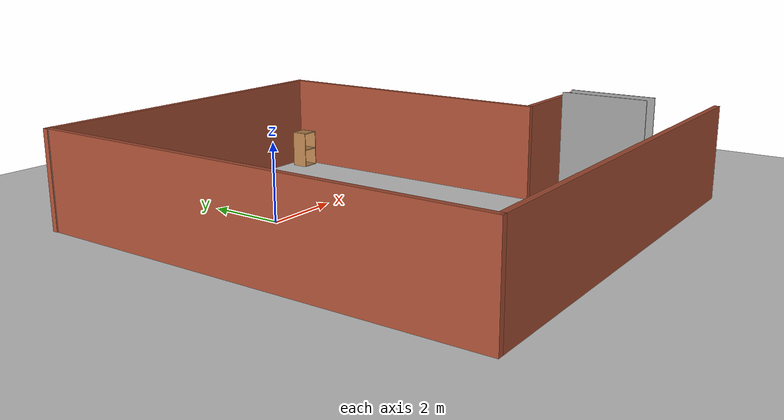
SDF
<sdf version="1.6">
 <world name="default">
  <light name="sun" type="directional">
   <pose>0 0 10 0 -0 0</pose>
   <diffuse>0.8 0.8 0.8 1</diffuse>
   <specular>0.2 0.2 0.2 1</specular>
   <attenuation>
    <range>1000</range>
    <constant>0.9</constant>
    <linear>0.01</linear>
    <quadratic>0.001</quadratic>
   </attenuation>
   <direction>-0.5 0.1 -0.9</direction>
  </light>
  <model name="ground_plane">
   <static>1</static>
   <link name="link">
    <collision name="collision">
     <geometry><plane><normal>0 0 1</normal><size>100 100</size></plane></geometry>
     <surface>
      <contact><collide_bitmask>65535</collide_bitmask></contact>
      <friction><ode><mu>100</mu><mu2>50</mu2></ode></friction>
     </surface>
    </collision>
    <visual name="visual">
     <cast_shadows>0</cast_shadows>
     <geometry><plane><normal>0 0 1</normal><size>100 100</size></plane></geometry>
     <material>
      <script><uri>file://media/materials/scripts/gazebo.material</uri><name>Gazebo/Grey</name></script>
     </material>
    </visual>
   </link>
  </model>
  <gravity>0 0 -9.8</gravity>
  <magnetic_field>6e-06 2.3e-05 -4.2e-05</magnetic_field>
  <atmosphere type="adiabatic"/>
  <physics name="default_physics" default="0" type="ode">
   <max_step_size>0.001</max_step_size>
   <real_time_factor>1</real_time_factor>
   <real_time_update_rate>1000</real_time_update_rate>
  </physics>
  <scene><ambient>0.4 0.4 0.4 1</ambient><background>0.7 0.7 0.7 1</background><shadows>0</shadows></scene>
  <audio><device>default</device></audio>
  <spherical_coordinates>
   <surface_model>EARTH_WGS84</surface_model>
   <latitude_deg>0</latitude_deg>
   <longitude_deg>0</longitude_deg>
   <elevation>0</elevation>
   <heading_deg>0</heading_deg>
  </spherical_coordinates>
  <model name="Untitled133">
   <link name="Wall_10">
    <pose>3 2.05 0 0 0 -1.5708</pose>
    <visual name="Wall_10_Visual">
     <pose>0 0 1.25 0 -0 0</pose>
     <geometry><box><size>8 0.15 2.5</size></box></geometry>
     <material>
      <script><uri>file://media/materials/scripts/gazebo.material</uri><name>Gazebo/Bricks</name></script>
      <ambient>1 1 1 1</ambient>
     </material>
     <meta><layer>0</layer></meta>
    </visual>
    <collision name="Wall_10_Collision">
     <pose>0 0 1.25 0 -0 0</pose>
     <geometry><box><size>8 0.15 2.5</size></box></geometry>
     <surface>
      <friction>
       <ode><mu>1</mu><mu2>1</mu2><fdir1>0 0 0</fdir1><slip1>0</slip1><slip2>0</slip2></ode>
       <torsional>
        <coefficient>1</coefficient>
        <patch_radius>0</patch_radius>
        <surface_radius>0</surface_radius>
        <use_patch_radius>1</use_patch_radius>
        <ode><slip>0</slip></ode>
       </torsional>
      </friction>
      <bounce><restitution_coefficient>0</restitution_coefficient><threshold>1e+06</threshold></bounce>
      <contact>
       <collide_without_contact>0</collide_without_contact>
       <collide_without_contact_bitmask>1</collide_without_contact_bitmask>
       <collide_bitmask>1</collide_bitmask>
       <ode>
        <soft_cfm>0</soft_cfm>
        <soft_erp>0.2</soft_erp>
        <kp>1e+13</kp>
        <kd>1</kd>
        <max_vel>0.01</max_vel>
        <min_depth>0</min_depth>
       </ode>
       <bullet>
        <split_impulse>1</split_impulse>
        <split_impulse_penetration_threshold>-0.01</split_impulse_penetration_threshold>
        <soft_cfm>0</soft_cfm>
        <soft_erp>0.2</soft_erp>
        <kp>1e+13</kp>
        <kd>1</kd>
       </bullet>
      </contact>
     </surface>
    </collision>
   </link>
   <link name="Wall_14">
    <pose>-5.82989 0.029886 0 0 0 -1.5708</pose>
    <visual name="Wall_14_Visual">
     <pose>0 0 1.25 0 -0 0</pose>
     <geometry><box><size>12 0.15 2.5</size></box></geometry>
     <material>
      <script><uri>file://media/materials/scripts/gazebo.material</uri><name>Gazebo/Bricks</name></script>
      <ambient>1 1 1 1</ambient>
     </material>
     <meta><layer>0</layer></meta>
    </visual>
    <collision name="Wall_14_Collision">
     <pose>0 0 1.25 0 -0 0</pose>
     <geometry><box><size>12 0.15 2.5</size></box></geometry>
     <surface>
      <friction>
       <ode><mu>1</mu><mu2>1</mu2><fdir1>0 0 0</fdir1><slip1>0</slip1><slip2>0</slip2></ode>
       <torsional>
        <coefficient>1</coefficient>
        <patch_radius>0</patch_radius>
        <surface_radius>0</surface_radius>
        <use_patch_radius>1</use_patch_radius>
        <ode><slip>0</slip></ode>
       </torsional>
      </friction>
      <bounce><restitution_coefficient>0</restitution_coefficient><threshold>1e+06</threshold></bounce>
      <contact>
       <collide_without_contact>0</collide_without_contact>
       <collide_without_contact_bitmask>1</collide_without_contact_bitmask>
       <collide_bitmask>1</collide_bitmask>
       <ode>
        <soft_cfm>0</soft_cfm>
        <soft_erp>0.2</soft_erp>
        <kp>1e+13</kp>
        <kd>1</kd>
        <max_vel>0.01</max_vel>
        <min_depth>0</min_depth>
       </ode>
       <bullet>
        <split_impulse>1</split_impulse>
        <split_impulse_penetration_threshold>-0.01</split_impulse_penetration_threshold>
        <soft_cfm>0</soft_cfm>
        <soft_erp>0.2</soft_erp>
        <kp>1e+13</kp>
        <kd>1</kd>
       </bullet>
      </contact>
     </surface>
    </collision>
   </link>
   <link name="Wall_16">
    <pose>-0.029887 -5.89511 0 0 -0 0</pose>
    <visual name="Wall_16_Visual">
     <pose>0 0 1.25 0 -0 0</pose>
     <geometry><box><size>11.75 0.15 2.5</size></box></geometry>
     <material>
      <script><uri>file://media/materials/scripts/gazebo.material</uri><name>Gazebo/Bricks</name></script>
      <ambient>1 1 1 1</ambient>
     </material>
     <meta><layer>0</layer></meta>
    </visual>
    <collision name="Wall_16_Collision">
     <pose>0 0 1.25 0 -0 0</pose>
     <geometry><box><size>11.75 0.15 2.5</size></box></geometry>
     <surface>
      <friction>
       <ode><mu>1</mu><mu2>1</mu2><fdir1>0 0 0</fdir1><slip1>0</slip1><slip2>0</slip2></ode>
       <torsional>
        <coefficient>1</coefficient>
        <patch_radius>0</patch_radius>
        <surface_radius>0</surface_radius>
        <use_patch_radius>1</use_patch_radius>
        <ode><slip>0</slip></ode>
       </torsional>
      </friction>
      <bounce><restitution_coefficient>0</restitution_coefficient><threshold>1e+06</threshold></bounce>
      <contact>
       <collide_without_contact>0</collide_without_contact>
       <collide_without_contact_bitmask>1</collide_without_contact_bitmask>
       <collide_bitmask>1</collide_bitmask>
       <ode>
        <soft_cfm>0</soft_cfm>
        <soft_erp>0.2</soft_erp>
        <kp>1e+13</kp>
        <kd>1</kd>
        <max_vel>0.01</max_vel>
        <min_depth>0</min_depth>
       </ode>
       <bullet>
        <split_impulse>1</split_impulse>
        <split_impulse_penetration_threshold>-0.01</split_impulse_penetration_threshold>
        <soft_cfm>0</soft_cfm>
        <soft_erp>0.2</soft_erp>
        <kp>1e+13</kp>
        <kd>1</kd>
       </bullet>
      </contact>
     </surface>
    </collision>
   </link>
   <link name="Wall_18">
    <pose>4.425 -1.875 0 0 -0 0</pose>
    <visual name="Wall_18_Visual">
     <pose>0 0 1.25 0 -0 0</pose>
     <geometry><box><size>3 0.15 2.5</size></box></geometry>
     <material>
      <script><uri>file://media/materials/scripts/gazebo.material</uri><name>Gazebo/Bricks</name></script>
      <ambient>1 1 1 1</ambient>
     </material>
     <meta><layer>0</layer></meta>
    </visual>
    <collision name="Wall_18_Collision">
     <pose>0 0 1.25 0 -0 0</pose>
     <geometry><box><size>3 0.15 2.5</size></box></geometry>
     <surface>
      <friction>
       <ode><mu>1</mu><mu2>1</mu2><fdir1>0 0 0</fdir1><slip1>0</slip1><slip2>0</slip2></ode>
       <torsional>
        <coefficient>1</coefficient>
        <patch_radius>0</patch_radius>
        <surface_radius>0</surface_radius>
        <use_patch_radius>1</use_patch_radius>
        <ode><slip>0</slip></ode>
       </torsional>
      </friction>
      <bounce><restitution_coefficient>0</restitution_coefficient><threshold>1e+06</threshold></bounce>
      <contact>
       <collide_without_contact>0</collide_without_contact>
       <collide_without_contact_bitmask>1</collide_without_contact_bitmask>
       <collide_bitmask>1</collide_bitmask>
       <ode>
        <soft_cfm>0</soft_cfm>
        <soft_erp>0.2</soft_erp>
        <kp>1e+13</kp>
        <kd>1</kd>
        <max_vel>0.01</max_vel>
        <min_depth>0</min_depth>
       </ode>
       <bullet>
        <split_impulse>1</split_impulse>
        <split_impulse_penetration_threshold>-0.01</split_impulse_penetration_threshold>
        <soft_cfm>0</soft_cfm>
        <soft_erp>0.2</soft_erp>
        <kp>1e+13</kp>
        <kd>1</kd>
       </bullet>
      </contact>
     </surface>
    </collision>
   </link>
   <link name="Wall_3">
    <pose>-1.425 5.975 0 0 -0 0</pose>
    <visual name="Wall_3_Visual">
     <pose>0 0 1.25 0 -0 0</pose>
     <geometry><box><size>9 0.15 2.5</size></box></geometry>
     <material>
      <script><uri>file://media/materials/scripts/gazebo.material</uri><name>Gazebo/Bricks</name></script>
      <ambient>1 1 1 1</ambient>
     </material>
     <meta><layer>0</layer></meta>
    </visual>
    <collision name="Wall_3_Collision">
     <pose>0 0 1.25 0 -0 0</pose>
     <geometry><box><size>9 0.15 2.5</size></box></geometry>
     <surface>
      <friction>
       <ode><mu>1</mu><mu2>1</mu2><fdir1>0 0 0</fdir1><slip1>0</slip1><slip2>0</slip2></ode>
       <torsional>
        <coefficient>1</coefficient>
        <patch_radius>0</patch_radius>
        <surface_radius>0</surface_radius>
        <use_patch_radius>1</use_patch_radius>
        <ode><slip>0</slip></ode>
       </torsional>
      </friction>
      <bounce><restitution_coefficient>0</restitution_coefficient><threshold>1e+06</threshold></bounce>
      <contact>
       <collide_without_contact>0</collide_without_contact>
       <collide_without_contact_bitmask>1</collide_without_contact_bitmask>
       <collide_bitmask>1</collide_bitmask>
       <ode>
        <soft_cfm>0</soft_cfm>
        <soft_erp>0.2</soft_erp>
        <kp>1e+13</kp>
        <kd>1</kd>
        <max_vel>0.01</max_vel>
        <min_depth>0</min_depth>
       </ode>
       <bullet>
        <split_impulse>1</split_impulse>
        <split_impulse_penetration_threshold>-0.01</split_impulse_penetration_threshold>
        <soft_cfm>0</soft_cfm>
        <soft_erp>0.2</soft_erp>
        <kp>1e+13</kp>
        <kd>1</kd>
       </bullet>
      </contact>
     </surface>
    </collision>
   </link>
   <link name="Wall_5">
    <pose>-5.82989 5.95489 0 0 -0 0</pose>
    <visual name="Wall_5_Visual">
     <pose>0 0 1.25 0 -0 0</pose>
     <geometry><box><size>0.15 0.15 2.5</size></box></geometry>
     <material>
      <script><uri>file://media/materials/scripts/gazebo.material</uri><name>Gazebo/Grey</name></script>
      <ambient>1 1 1 1</ambient>
     </material>
     <meta><layer>0</layer></meta>
    </visual>
    <collision name="Wall_5_Collision">
     <pose>0 0 1.25 0 -0 0</pose>
     <geometry><box><size>0.15 0.15 2.5</size></box></geometry>
     <surface>
      <friction>
       <ode><mu>1</mu><mu2>1</mu2><fdir1>0 0 0</fdir1><slip1>0</slip1><slip2>0</slip2></ode>
       <torsional>
        <coefficient>1</coefficient>
        <patch_radius>0</patch_radius>
        <surface_radius>0</surface_radius>
        <use_patch_radius>1</use_patch_radius>
        <ode><slip>0</slip></ode>
       </torsional>
      </friction>
      <bounce><restitution_coefficient>0</restitution_coefficient><threshold>1e+06</threshold></bounce>
      <contact>
       <collide_without_contact>0</collide_without_contact>
       <collide_without_contact_bitmask>1</collide_without_contact_bitmask>
       <collide_bitmask>1</collide_bitmask>
       <ode>
        <soft_cfm>0</soft_cfm>
        <soft_erp>0.2</soft_erp>
        <kp>1e+13</kp>
        <kd>1</kd>
        <max_vel>0.01</max_vel>
        <min_depth>0</min_depth>
       </ode>
       <bullet>
        <split_impulse>1</split_impulse>
        <split_impulse_penetration_threshold>-0.01</split_impulse_penetration_threshold>
        <soft_cfm>0</soft_cfm>
        <soft_erp>0.2</soft_erp>
        <kp>1e+13</kp>
        <kd>1</kd>
       </bullet>
      </contact>
     </surface>
    </collision>
   </link>
   <static>1</static>
   <pose>2.3811 -2.17981 0 0 -0 0</pose>
  </model>
  <model name="unit_box_0">
   <link name="link">
    <inertial>
     <mass>1</mass>
     <inertia>
      <ixx>0.166667</ixx>
      <ixy>0</ixy>
      <ixz>0</ixz>
      <iyy>0.166667</iyy>
      <iyz>0</iyz>
      <izz>0.166667</izz>
     </inertia>
    </inertial>
    <visual name="visual">
     <geometry><box><size>2.1994 0.038473 2.97721</size></box></geometry>
     <material>
      <script><name>Gazebo/Grey</name><uri>file://media/materials/scripts/gazebo.material</uri></script>
      <shader type="vertex"><normal_map>__default__</normal_map></shader>
      <ambient>0.3 0.3 0.3 1</ambient>
      <diffuse>0.7 0.7 0.7 1</diffuse>
      <specular>0.01 0.01 0.01 1</specular>
      <emissive>0 0 0 1</emissive>
     </material>
    </visual>
    <collision name="collision">
     <geometry><box><size>2.1994 0.038473 2.97721</size></box></geometry>
     <surface>
      <friction>
       <ode><mu>1</mu><mu2>1</mu2><fdir1>0 0 0</fdir1><slip1>0</slip1><slip2>0</slip2></ode>
       <torsional>
        <coefficient>1</coefficient>
        <patch_radius>0</patch_radius>
        <surface_radius>0</surface_radius>
        <use_patch_radius>1</use_patch_radius>
        <ode><slip>0</slip></ode>
       </torsional>
      </friction>
      <bounce><restitution_coefficient>0</restitution_coefficient><threshold>1e+06</threshold></bounce>
      <contact>
       <collide_without_contact>0</collide_without_contact>
       <collide_without_contact_bitmask>1</collide_without_contact_bitmask>
       <collide_bitmask>1</collide_bitmask>
       <ode>
        <soft_cfm>0</soft_cfm>
        <soft_erp>0.2</soft_erp>
        <kp>1e+13</kp>
        <kd>1</kd>
        <max_vel>0.01</max_vel>
        <min_depth>0</min_depth>
       </ode>
       <bullet>
        <split_impulse>1</split_impulse>
        <split_impulse_penetration_threshold>-0.01</split_impulse_penetration_threshold>
        <soft_cfm>0</soft_cfm>
        <soft_erp>0.2</soft_erp>
        <kp>1e+13</kp>
        <kd>1</kd>
       </bullet>
      </contact>
     </surface>
    </collision>
   </link>
   <static>0</static>
   <pose>5.30696 -6.13182 1.4886 0 -2e-06 -1.57495</pose>
  </model>
  <model name="unit_box_0_clone">
   <link name="link">
    <inertial>
     <mass>1</mass>
     <inertia>
      <ixx>0.166667</ixx>
      <ixy>0</ixy>
      <ixz>0</ixz>
      <iyy>0.166667</iyy>
      <iyz>0</iyz>
      <izz>0.166667</izz>
     </inertia>
    </inertial>
    <visual name="visual">
     <geometry><box><size>2.1994 0.038473 2.97721</size></box></geometry>
     <material>
      <script><name>Gazebo/Grey</name><uri>file://media/materials/scripts/gazebo.material</uri></script>
      <shader type="vertex"><normal_map>__default__</normal_map></shader>
      <ambient>0.3 0.3 0.3 1</ambient>
      <diffuse>0.7 0.7 0.7 1</diffuse>
      <specular>0.01 0.01 0.01 1</specular>
      <emissive>0 0 0 1</emissive>
     </material>
    </visual>
    <collision name="collision">
     <geometry><box><size>2.1994 0.038473 2.97721</size></box></geometry>
     <surface>
      <friction>
       <ode><mu>1</mu><mu2>1</mu2><fdir1>0 0 0</fdir1><slip1>0</slip1><slip2>0</slip2></ode>
       <torsional>
        <coefficient>1</coefficient>
        <patch_radius>0</patch_radius>
        <surface_radius>0</surface_radius>
        <use_patch_radius>1</use_patch_radius>
        <ode><slip>0</slip></ode>
       </torsional>
      </friction>
      <bounce><restitution_coefficient>0</restitution_coefficient><threshold>1e+06</threshold></bounce>
      <contact>
       <collide_without_contact>0</collide_without_contact>
       <collide_without_contact_bitmask>1</collide_without_contact_bitmask>
       <collide_bitmask>1</collide_bitmask>
       <ode>
        <soft_cfm>0</soft_cfm>
        <soft_erp>0.2</soft_erp>
        <kp>1e+13</kp>
        <kd>1</kd>
        <max_vel>0.01</max_vel>
        <min_depth>0</min_depth>
       </ode>
       <bullet>
        <split_impulse>1</split_impulse>
        <split_impulse_penetration_threshold>-0.01</split_impulse_penetration_threshold>
        <soft_cfm>0</soft_cfm>
        <soft_erp>0.2</soft_erp>
        <kp>1e+13</kp>
        <kd>1</kd>
       </bullet>
      </contact>
     </surface>
    </collision>
   </link>
   <static>0</static>
   <pose>5.77109 -6.16496 1.4886 0 -2e-06 -1.57495</pose>
  </model>
  <model name="cabinet">
   <static>1</static>
   <link name="cabinet_bottom_plate">
    <inertial>
     <pose>0 0 -1 0 -0 0</pose>
     <inertia><ixx>2.05</ixx><ixy>0</ixy><ixz>0</ixz><iyy>2.05</iyy><iyz>0</iyz><izz>2.05</izz></inertia>
     <mass>25</mass>
    </inertial>
    <collision name="cabinet_bottom_plate_geom">
     <pose>0 0 0.01 0 -0 0</pose>
     <geometry><box><size>0.45 0.45 0.02</size></box></geometry>
    </collision>
    <visual name="cabinet_bottom_plate_geom_visual">
     <pose>0 0 0.01 0 -0 0</pose>
     <geometry><box><size>0.45 0.45 0.02</size></box></geometry>
     <material>
      <script><uri>file://media/materials/scripts/gazebo.material</uri><name>Gazebo/Wood</name></script>
     </material>
    </visual>
    <collision name="cabinet_bottom_plate_geom_cabinet_back_plate">
     <pose>0.235 0 0.51 0 -0 0</pose>
     <geometry><box><size>0.02 0.45 1.02</size></box></geometry>
    </collision>
    <visual name="cabinet_bottom_plate_geom_cabinet_back_plate_visual">
     <pose>0.235 0 0.51 0 -0 0</pose>
     <geometry><box><size>0.02 0.45 1.02</size></box></geometry>
     <material>
      <script><uri>file://media/materials/scripts/gazebo.material</uri><name>Gazebo/Wood</name></script>
     </material>
    </visual>
    <collision name="cabinet_bottom_plate_geom_cabinet_left_plate">
     <pose>0 0.235 0.51 0 -0 0</pose>
     <geometry><box><size>0.45 0.02 1.02</size></box></geometry>
    </collision>
    <visual name="cabinet_bottom_plate_geom_cabinet_left_plate_visual">
     <pose>0 0.235 0.51 0 -0 0</pose>
     <geometry><box><size>0.45 0.02 1.02</size></box></geometry>
     <material>
      <script><uri>file://media/materials/scripts/gazebo.material</uri><name>Gazebo/Wood</name></script>
     </material>
    </visual>
    <collision name="cabinet_bottom_plate_geom_cabinet_middle_plate">
     <pose>0 0 0.51 0 -0 0</pose>
     <geometry><box><size>0.45 0.45 0.02</size></box></geometry>
    </collision>
    <visual name="cabinet_bottom_plate_geom_cabinet_middle_plate_visual">
     <pose>0 0 0.51 0 -0 0</pose>
     <geometry><box><size>0.45 0.45 0.02</size></box></geometry>
     <material>
      <script><uri>file://media/materials/scripts/gazebo.material</uri><name>Gazebo/Wood</name></script>
     </material>
    </visual>
    <collision name="cabinet_bottom_plate_geom_cabinet_right_plate">
     <pose>0 -0.235 0.51 0 -0 0</pose>
     <geometry><box><size>0.45 0.02 1.02</size></box></geometry>
    </collision>
    <visual name="cabinet_bottom_plate_geom_cabinet_right_plate_visual">
     <pose>0 -0.235 0.51 0 -0 0</pose>
     <geometry><box><size>0.45 0.02 1.02</size></box></geometry>
     <material>
      <script><uri>file://media/materials/scripts/gazebo.material</uri><name>Gazebo/Wood</name></script>
     </material>
    </visual>
    <collision name="cabinet_bottom_plate_geom_cabinet_top_plate">
     <pose>0 0 1.01 0 -0 0</pose>
     <geometry><box><size>0.45 0.45 0.02</size></box></geometry>
    </collision>
    <visual name="cabinet_bottom_plate_geom_cabinet_top_plate_visual">
     <pose>0 0 1.01 0 -0 0</pose>
     <geometry><box><size>0.45 0.45 0.02</size></box></geometry>
     <material>
      <script><uri>file://media/materials/scripts/gazebo.material</uri><name>Gazebo/Wood</name></script>
     </material>
    </visual>
   </link>
   <pose>4.93425 3.2741 0 0 -0 1.5768</pose>
  </model>
 </world>
</sdf>
